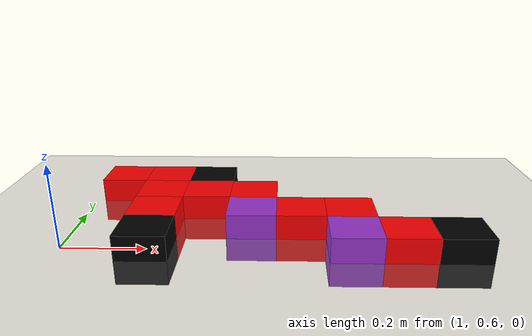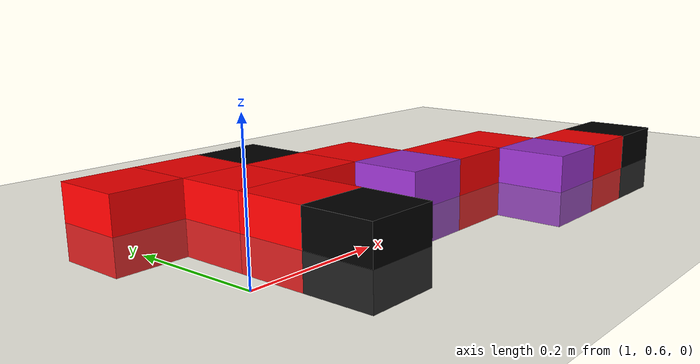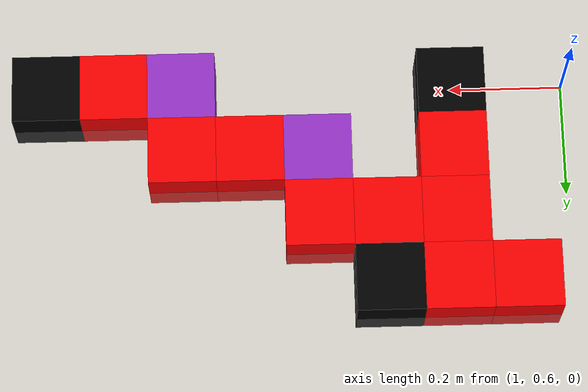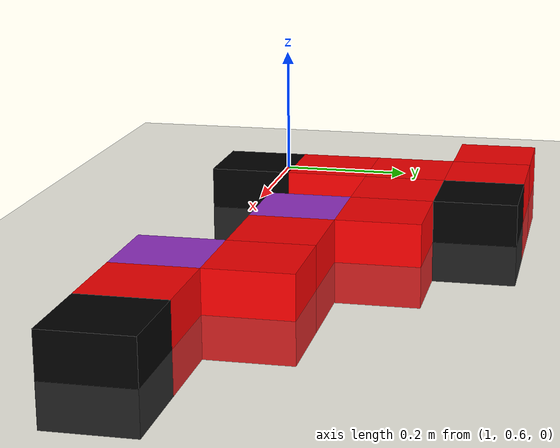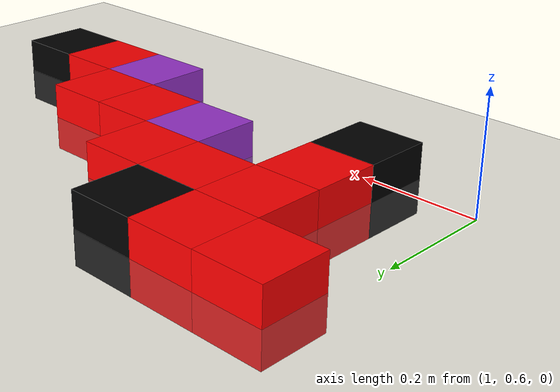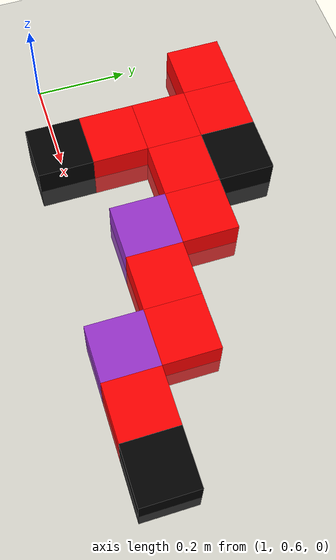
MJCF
<mujoco model="generation">
  <compiler angle="radian"/>

  <option timestep="0.02"/>

  <size nkey="1"/>

  <default>
    <joint armature="0.01" damping="0.1"/>
    <geom friction="0.6 0.1 0.1" density="300"/>
  </default>

  <worldbody>
    <geom name="floor" size="10 10 0.05" type="plane"/>
    <body name="body_basic_0" pos="1.08 0.96 0">
      <joint name="root_freejoint" type="free" armature="0" damping="0"/>
      <geom name="geom_basic_0" size="0.06 0.06 0.06" type="box" contype="0" conaffinity="0" rgba="1 0 0 1"/>
      <body name="body_basic_1" pos="0.12 0 0">
        <geom name="geom_basic_1" size="0.06 0.06 0.06" type="box" contype="0" conaffinity="0" rgba="1 0 0 1"/>
        <body name="body_basic_2" pos="0.12 0 0">
          <geom name="geom_basic_2" size="0.06 0.06 0.06" type="box" contype="0" rgba="0 0 0 1"/>
        </body>
        <body name="body_basic_3" pos="0 -0.12 0">
          <geom name="geom_basic_3" size="0.06 0.06 0.06" type="box" contype="0" conaffinity="0" rgba="1 0 0 1"/>
          <body name="body_basic_4" pos="0.12 0 0">
            <geom name="geom_basic_4" size="0.06 0.06 0.06" type="box" contype="0" conaffinity="0" rgba="1 0 0 1"/>
            <body name="body_basic_5" pos="0.12 0 0">
              <geom name="geom_basic_5" size="0.06 0.06 0.06" type="box" contype="0" conaffinity="0" rgba="1 0 0 1"/>
              <body name="body_joint_6" pos="0 -0.12 0">
                <geom name="geom_joint_6" size="0.06 0.06 0.06" type="box" contype="0" conaffinity="0" rgba="0.6 0.2 0.8 1"/>
                <body name="joint_disk_6" pos="0.06 0 0" quat="0.707107 0 0.707107 0">
                  <joint name="disk_hinge_6" pos="0 0 0" axis="0 0 1" limited="true" range="-3.14159 3.14159"/>
                  <geom name="disk_geom_6" size="0.06 0.003" type="cylinder" contype="0" conaffinity="0" rgba="0.2 0.6 0.9 1"/>
                  <body name="body_basic_7" pos="0 0 0.06" quat="0.707107 0 -0.707107 0">
                    <geom name="geom_basic_7" size="0.06 0.06 0.06" type="box" contype="0" conaffinity="0" rgba="1 0 0 1"/>
                    <body name="body_basic_8" pos="0.12 0 0">
                      <geom name="geom_basic_8" size="0.06 0.06 0.06" type="box" contype="0" conaffinity="0" rgba="1 0 0 1"/>
                      <body name="body_joint_9" pos="0 -0.12 0">
                        <geom name="geom_joint_9" size="0.06 0.06 0.06" type="box" contype="0" conaffinity="0" rgba="0.6 0.2 0.8 1"/>
                        <body name="joint_disk_9" pos="0.06 0 0" quat="0.707107 0 0.707107 0">
                          <joint name="disk_hinge_9" pos="0 0 0" axis="0 0 1" limited="true" range="-3.14159 3.14159"/>
                          <geom name="disk_geom_9" size="0.06 0.003" type="cylinder" contype="0" conaffinity="0" rgba="0.2 0.6 0.9 1"/>
                          <body name="body_basic_10" pos="0 0 0.06" quat="0.707107 0 -0.707107 0">
                            <geom name="geom_basic_10" size="0.06 0.06 0.06" type="box" contype="0" conaffinity="0" rgba="1 0 0 1"/>
                            <body name="body_basic_11" pos="0.12 0 0">
                              <geom name="geom_basic_11" size="0.06 0.06 0.06" type="box" contype="0" rgba="0 0 0 1"/>
                            </body>
                          </body>
                        </body>
                      </body>
                    </body>
                  </body>
                </body>
              </body>
            </body>
          </body>
          <body name="body_basic_12" pos="0 -0.12 0">
            <geom name="geom_basic_12" size="0.06 0.06 0.06" type="box" contype="0" conaffinity="0" rgba="1 0 0 1"/>
            <body name="body_basic_13" pos="0 -0.12 0">
              <geom name="geom_basic_13" size="0.06 0.06 0.06" type="box" contype="0" rgba="0 0 0 1"/>
            </body>
          </body>
        </body>
      </body>
    </body>
  </worldbody>

  <actuator>
    <general name="act_disk_hinge_6" joint="disk_hinge_6" ctrllimited="true" ctrlrange="-100 100"/>
    <general name="act_disk_hinge_9" joint="disk_hinge_9" ctrllimited="true" ctrlrange="-100 100"/>
  </actuator>

  <keyframe>
    <key name="home" qpos="0 0 0 1 0 0 0 0 0"/>
  </keyframe>
</mujoco>
